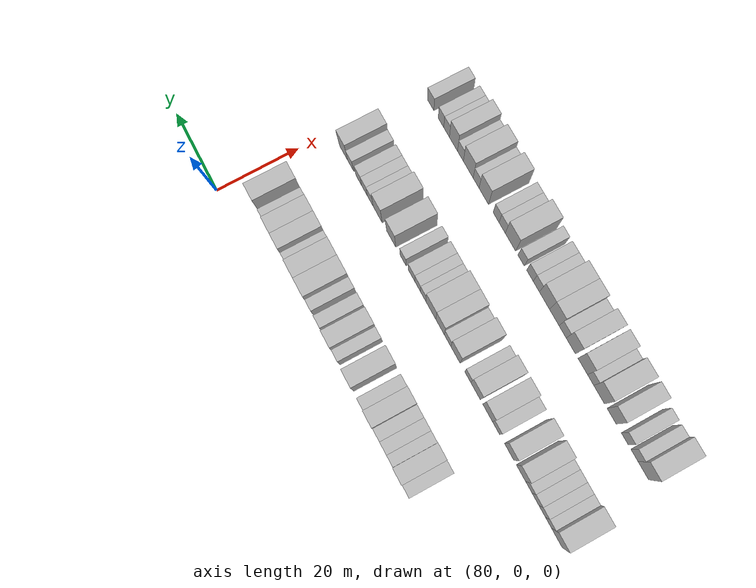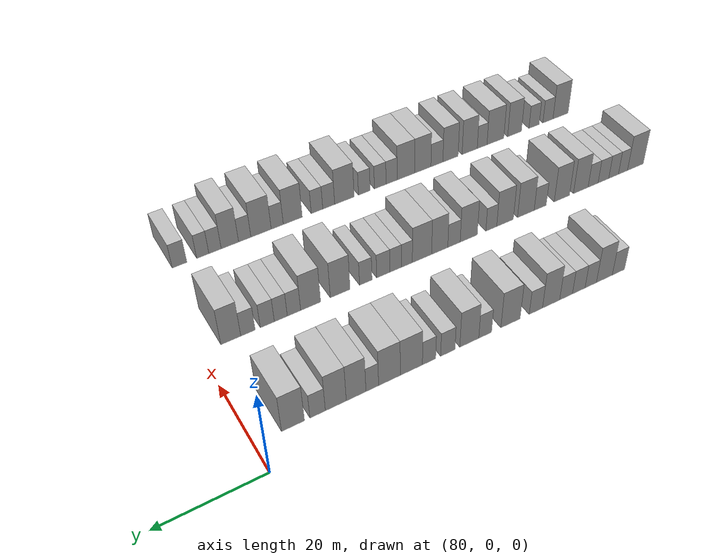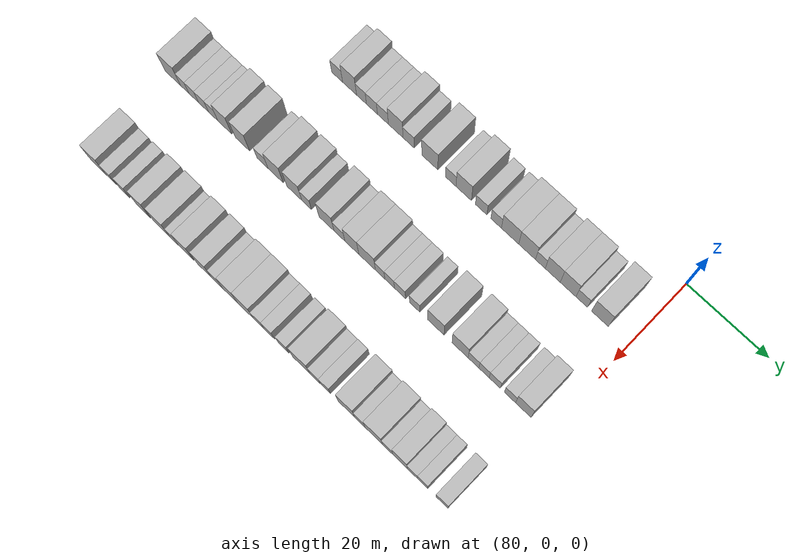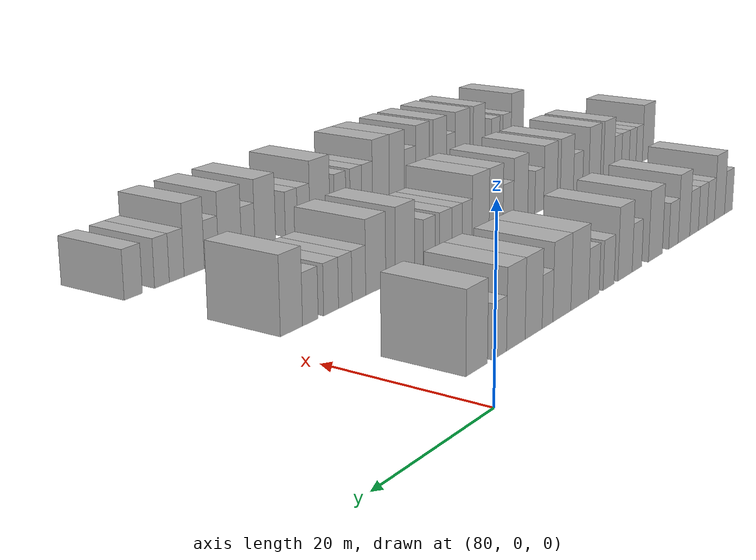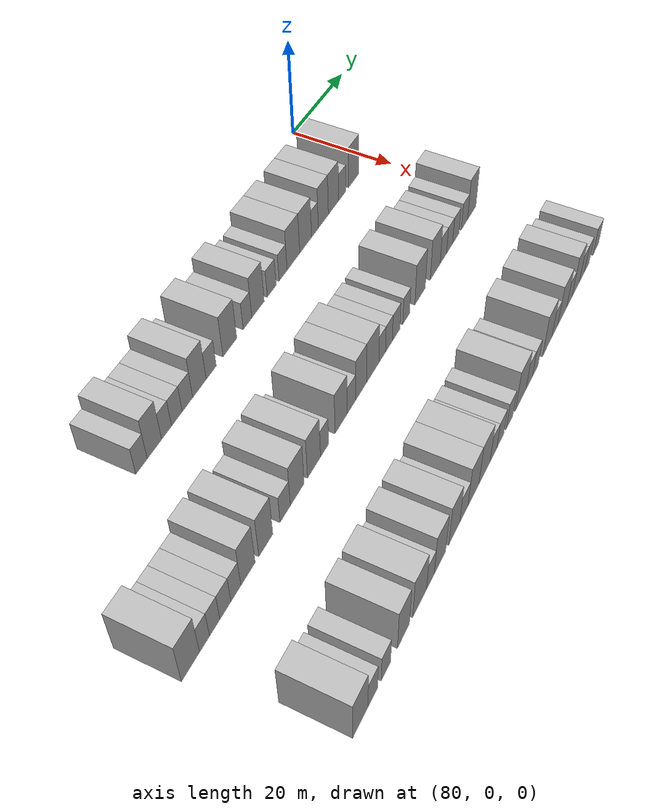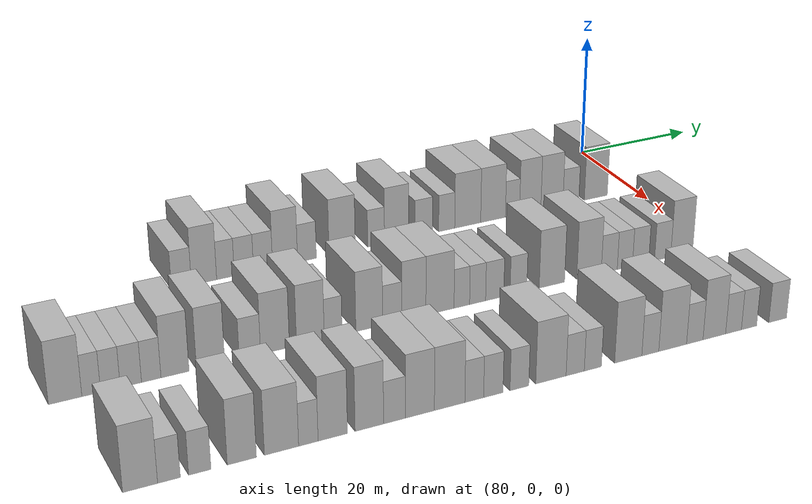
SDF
<sdf version="1.6">
 <world name="default">
  <model name="building_634">
   <static>1</static>
   <pose>91.0000 -74.9870 0 0.000000 0.000000 0.000000</pose>
   <link name="link">
    <pose>0 0 3.00 0 0 0</pose>
    <collision name="collision"><geometry><box><size>10.0000 2.9409 6.0000</size></box></geometry></collision>
    <visual name="visual">
     <cast_shadows>0</cast_shadows>
     <geometry><box><size>10.0000 2.9409 6.0000</size></box></geometry>
     <material>
      <script>
       <uri>model://HANNAS_wall/materials/scripts</uri>
       <uri>model://HANNAS_wall/materials/textures</uri>
       <name>vrc/HANNAS_wall</name>
      </script>
     </material>
    </visual>
   </link>
  </model>
  <model name="building_635">
   <static>1</static>
   <pose>91.0000 -71.6371 0 0.000000 0.000000 0.000000</pose>
   <link name="link">
    <pose>0 0 4.50 0 0 0</pose>
    <collision name="collision"><geometry><box><size>10.0000 3.7589 9.0000</size></box></geometry></collision>
    <visual name="visual">
     <cast_shadows>0</cast_shadows>
     <geometry><box><size>10.0000 3.7589 9.0000</size></box></geometry>
     <material>
      <script>
       <uri>model://HANNAS_wall/materials/scripts</uri>
       <uri>model://HANNAS_wall/materials/textures</uri>
       <name>vrc/HANNAS_wall</name>
      </script>
     </material>
    </visual>
   </link>
  </model>
  <model name="building_636">
   <static>1</static>
   <pose>91.0000 -68.4278 0 0.000000 0.000000 0.000000</pose>
   <link name="link">
    <pose>0 0 3.00 0 0 0</pose>
    <collision name="collision"><geometry><box><size>10.0000 2.6599 6.0000</size></box></geometry></collision>
    <visual name="visual">
     <cast_shadows>0</cast_shadows>
     <geometry><box><size>10.0000 2.6599 6.0000</size></box></geometry>
     <material>
      <script>
       <uri>model://HANNAS_wall/materials/scripts</uri>
       <uri>model://HANNAS_wall/materials/textures</uri>
       <name>vrc/HANNAS_wall</name>
      </script>
     </material>
    </visual>
   </link>
  </model>
  <model name="building_637">
   <static>1</static>
   <pose>91.0000 -65.6392 0 0.000000 0.000000 0.000000</pose>
   <link name="link">
    <pose>0 0 3.00 0 0 0</pose>
    <collision name="collision"><geometry><box><size>10.0000 2.9174 6.0000</size></box></geometry></collision>
    <visual name="visual">
     <cast_shadows>0</cast_shadows>
     <geometry><box><size>10.0000 2.9174 6.0000</size></box></geometry>
     <material>
      <script>
       <uri>model://HANNAS_wall/materials/scripts</uri>
       <uri>model://HANNAS_wall/materials/textures</uri>
       <name>vrc/HANNAS_wall</name>
      </script>
     </material>
    </visual>
   </link>
  </model>
  <model name="building_638">
   <static>1</static>
   <pose>91.0000 -62.7190 0 0.000000 0.000000 0.000000</pose>
   <link name="link">
    <pose>0 0 3.00 0 0 0</pose>
    <collision name="collision"><geometry><box><size>10.0000 2.9229 6.0000</size></box></geometry></collision>
    <visual name="visual">
     <cast_shadows>0</cast_shadows>
     <geometry><box><size>10.0000 2.9229 6.0000</size></box></geometry>
     <material>
      <script>
       <uri>model://HANNAS_wall/materials/scripts</uri>
       <uri>model://HANNAS_wall/materials/textures</uri>
       <name>vrc/HANNAS_wall</name>
      </script>
     </material>
    </visual>
   </link>
  </model>
  <model name="building_639">
   <static>1</static>
   <pose>91.0000 -59.3203 0 0.000000 0.000000 0.000000</pose>
   <link name="link">
    <pose>0 0 4.50 0 0 0</pose>
    <collision name="collision"><geometry><box><size>10.0000 3.8744 9.0000</size></box></geometry></collision>
    <visual name="visual">
     <cast_shadows>0</cast_shadows>
     <geometry><box><size>10.0000 3.8744 9.0000</size></box></geometry>
     <material>
      <script>
       <uri>model://HANNAS_wall/materials/scripts</uri>
       <uri>model://HANNAS_wall/materials/textures</uri>
       <name>vrc/HANNAS_wall</name>
      </script>
     </material>
    </visual>
   </link>
  </model>
  <model name="building_640">
   <static>1</static>
   <pose>91.0000 -55.9106 0 0.000000 0.000000 0.000000</pose>
   <link name="link">
    <pose>0 0 3.00 0 0 0</pose>
    <collision name="collision"><geometry><box><size>10.0000 2.9450 6.0000</size></box></geometry></collision>
    <visual name="visual">
     <cast_shadows>0</cast_shadows>
     <geometry><box><size>10.0000 2.9450 6.0000</size></box></geometry>
     <material>
      <script>
       <uri>model://HANNAS_wall/materials/scripts</uri>
       <uri>model://HANNAS_wall/materials/textures</uri>
       <name>vrc/HANNAS_wall</name>
      </script>
     </material>
    </visual>
   </link>
  </model>
  <model name="building_641">
   <static>1</static>
   <pose>91.0000 -50.3419 0 0.000000 0.000000 0.000000</pose>
   <link name="link">
    <pose>0 0 4.50 0 0 0</pose>
    <collision name="collision"><geometry><box><size>10.0000 4.1923 9.0000</size></box></geometry></collision>
    <visual name="visual">
     <cast_shadows>0</cast_shadows>
     <geometry><box><size>10.0000 4.1923 9.0000</size></box></geometry>
     <material>
      <script>
       <uri>model://HANNAS_wall/materials/scripts</uri>
       <uri>model://HANNAS_wall/materials/textures</uri>
       <name>vrc/HANNAS_wall</name>
      </script>
     </material>
    </visual>
   </link>
  </model>
  <model name="building_642">
   <static>1</static>
   <pose>91.0000 -44.8779 0 0.000000 0.000000 0.000000</pose>
   <link name="link">
    <pose>0 0 3.00 0 0 0</pose>
    <collision name="collision"><geometry><box><size>10.0000 2.7359 6.0000</size></box></geometry></collision>
    <visual name="visual">
     <cast_shadows>0</cast_shadows>
     <geometry><box><size>10.0000 2.7359 6.0000</size></box></geometry>
     <material>
      <script>
       <uri>model://HANNAS_wall/materials/scripts</uri>
       <uri>model://HANNAS_wall/materials/textures</uri>
       <name>vrc/HANNAS_wall</name>
      </script>
     </material>
    </visual>
   </link>
  </model>
  <model name="building_643">
   <static>1</static>
   <pose>91.0000 -41.5169 0 0.000000 0.000000 0.000000</pose>
   <link name="link">
    <pose>0 0 4.50 0 0 0</pose>
    <collision name="collision"><geometry><box><size>10.0000 3.9860 9.0000</size></box></geometry></collision>
    <visual name="visual">
     <cast_shadows>0</cast_shadows>
     <geometry><box><size>10.0000 3.9860 9.0000</size></box></geometry>
     <material>
      <script>
       <uri>model://HANNAS_wall/materials/scripts</uri>
       <uri>model://HANNAS_wall/materials/textures</uri>
       <name>vrc/HANNAS_wall</name>
      </script>
     </material>
    </visual>
   </link>
  </model>
  <model name="building_644">
   <static>1</static>
   <pose>91.0000 -37.0405 0 0.000000 0.000000 0.000000</pose>
   <link name="link">
    <pose>0 0 3.00 0 0 0</pose>
    <collision name="collision"><geometry><box><size>10.0000 2.9669 6.0000</size></box></geometry></collision>
    <visual name="visual">
     <cast_shadows>0</cast_shadows>
     <geometry><box><size>10.0000 2.9669 6.0000</size></box></geometry>
     <material>
      <script>
       <uri>model://HANNAS_wall/materials/scripts</uri>
       <uri>model://HANNAS_wall/materials/textures</uri>
       <name>vrc/HANNAS_wall</name>
      </script>
     </material>
    </visual>
   </link>
  </model>
  <model name="building_645">
   <static>1</static>
   <pose>91.0000 -33.2021 0 0.000000 0.000000 0.000000</pose>
   <link name="link">
    <pose>0 0 3.00 0 0 0</pose>
    <collision name="collision"><geometry><box><size>10.0000 2.7098 6.0000</size></box></geometry></collision>
    <visual name="visual">
     <cast_shadows>0</cast_shadows>
     <geometry><box><size>10.0000 2.7098 6.0000</size></box></geometry>
     <material>
      <script>
       <uri>model://HANNAS_wall/materials/scripts</uri>
       <uri>model://HANNAS_wall/materials/textures</uri>
       <name>vrc/HANNAS_wall</name>
      </script>
     </material>
    </visual>
   </link>
  </model>
  <model name="building_646">
   <static>1</static>
   <pose>91.0000 -29.6387 0 0.000000 0.000000 0.000000</pose>
   <link name="link">
    <pose>0 0 4.50 0 0 0</pose>
    <collision name="collision"><geometry><box><size>10.0000 4.4169 9.0000</size></box></geometry></collision>
    <visual name="visual">
     <cast_shadows>0</cast_shadows>
     <geometry><box><size>10.0000 4.4169 9.0000</size></box></geometry>
     <material>
      <script>
       <uri>model://HANNAS_wall/materials/scripts</uri>
       <uri>model://HANNAS_wall/materials/textures</uri>
       <name>vrc/HANNAS_wall</name>
      </script>
     </material>
    </visual>
   </link>
  </model>
  <model name="building_647">
   <static>1</static>
   <pose>91.0000 -25.2966 0 0.000000 0.000000 0.000000</pose>
   <link name="link">
    <pose>0 0 4.50 0 0 0</pose>
    <collision name="collision"><geometry><box><size>10.0000 4.2672 9.0000</size></box></geometry></collision>
    <visual name="visual">
     <cast_shadows>0</cast_shadows>
     <geometry><box><size>10.0000 4.2672 9.0000</size></box></geometry>
     <material>
      <script>
       <uri>model://HANNAS_wall/materials/scripts</uri>
       <uri>model://HANNAS_wall/materials/textures</uri>
       <name>vrc/HANNAS_wall</name>
      </script>
     </material>
    </visual>
   </link>
  </model>
  <model name="building_648">
   <static>1</static>
   <pose>91.0000 -21.9353 0 0.000000 0.000000 0.000000</pose>
   <link name="link">
    <pose>0 0 3.00 0 0 0</pose>
    <collision name="collision"><geometry><box><size>10.0000 2.4554 6.0000</size></box></geometry></collision>
    <visual name="visual">
     <cast_shadows>0</cast_shadows>
     <geometry><box><size>10.0000 2.4554 6.0000</size></box></geometry>
     <material>
      <script>
       <uri>model://HANNAS_wall/materials/scripts</uri>
       <uri>model://HANNAS_wall/materials/textures</uri>
       <name>vrc/HANNAS_wall</name>
      </script>
     </material>
    </visual>
   </link>
  </model>
  <model name="building_649">
   <static>1</static>
   <pose>91.0000 -18.8264 0 0.000000 0.000000 0.000000</pose>
   <link name="link">
    <pose>0 0 4.50 0 0 0</pose>
    <collision name="collision"><geometry><box><size>10.0000 3.7625 9.0000</size></box></geometry></collision>
    <visual name="visual">
     <cast_shadows>0</cast_shadows>
     <geometry><box><size>10.0000 3.7625 9.0000</size></box></geometry>
     <material>
      <script>
       <uri>model://HANNAS_wall/materials/scripts</uri>
       <uri>model://HANNAS_wall/materials/textures</uri>
       <name>vrc/HANNAS_wall</name>
      </script>
     </material>
    </visual>
   </link>
  </model>
  <model name="building_650">
   <static>1</static>
   <pose>91.0000 -14.9778 0 0.000000 0.000000 0.000000</pose>
   <link name="link">
    <pose>0 0 4.50 0 0 0</pose>
    <collision name="collision"><geometry><box><size>10.0000 3.9345 9.0000</size></box></geometry></collision>
    <visual name="visual">
     <cast_shadows>0</cast_shadows>
     <geometry><box><size>10.0000 3.9345 9.0000</size></box></geometry>
     <material>
      <script>
       <uri>model://HANNAS_wall/materials/scripts</uri>
       <uri>model://HANNAS_wall/materials/textures</uri>
       <name>vrc/HANNAS_wall</name>
      </script>
     </material>
    </visual>
   </link>
  </model>
  <model name="building_651">
   <static>1</static>
   <pose>91.0000 -11.5819 0 0.000000 0.000000 0.000000</pose>
   <link name="link">
    <pose>0 0 3.00 0 0 0</pose>
    <collision name="collision"><geometry><box><size>10.0000 2.8575 6.0000</size></box></geometry></collision>
    <visual name="visual">
     <cast_shadows>0</cast_shadows>
     <geometry><box><size>10.0000 2.8575 6.0000</size></box></geometry>
     <material>
      <script>
       <uri>model://HANNAS_wall/materials/scripts</uri>
       <uri>model://HANNAS_wall/materials/textures</uri>
       <name>vrc/HANNAS_wall</name>
      </script>
     </material>
    </visual>
   </link>
  </model>
  <model name="building_652">
   <static>1</static>
   <pose>91.0000 -7.0618 0 0.000000 0.000000 0.000000</pose>
   <link name="link">
    <pose>0 0 4.50 0 0 0</pose>
    <collision name="collision"><geometry><box><size>10.0000 4.1827 9.0000</size></box></geometry></collision>
    <visual name="visual">
     <cast_shadows>0</cast_shadows>
     <geometry><box><size>10.0000 4.1827 9.0000</size></box></geometry>
     <material>
      <script>
       <uri>model://HANNAS_wall/materials/scripts</uri>
       <uri>model://HANNAS_wall/materials/textures</uri>
       <name>vrc/HANNAS_wall</name>
      </script>
     </material>
    </visual>
   </link>
  </model>
  <model name="building_815">
   <static>1</static>
   <pose>113.0000 -97.4550 0 0.000000 0.000000 0.000000</pose>
   <link name="link">
    <pose>0 0 4.50 0 0 0</pose>
    <collision name="collision"><geometry><box><size>10.0000 4.2593 9.0000</size></box></geometry></collision>
    <visual name="visual">
     <cast_shadows>0</cast_shadows>
     <geometry><box><size>10.0000 4.2593 9.0000</size></box></geometry>
     <material>
      <script>
       <uri>model://HANNAS_wall/materials/scripts</uri>
       <uri>model://HANNAS_wall/materials/textures</uri>
       <name>vrc/HANNAS_wall</name>
      </script>
     </material>
    </visual>
   </link>
  </model>
  <model name="building_816">
   <static>1</static>
   <pose>113.0000 -94.1208 0 0.000000 0.000000 0.000000</pose>
   <link name="link">
    <pose>0 0 3.00 0 0 0</pose>
    <collision name="collision"><geometry><box><size>10.0000 2.4091 6.0000</size></box></geometry></collision>
    <visual name="visual">
     <cast_shadows>0</cast_shadows>
     <geometry><box><size>10.0000 2.4091 6.0000</size></box></geometry>
     <material>
      <script>
       <uri>model://HANNAS_wall/materials/scripts</uri>
       <uri>model://HANNAS_wall/materials/textures</uri>
       <name>vrc/HANNAS_wall</name>
      </script>
     </material>
    </visual>
   </link>
  </model>
  <model name="building_817">
   <static>1</static>
   <pose>113.0000 -91.6445 0 0.000000 0.000000 0.000000</pose>
   <link name="link">
    <pose>0 0 3.00 0 0 0</pose>
    <collision name="collision"><geometry><box><size>10.0000 2.5435 6.0000</size></box></geometry></collision>
    <visual name="visual">
     <cast_shadows>0</cast_shadows>
     <geometry><box><size>10.0000 2.5435 6.0000</size></box></geometry>
     <material>
      <script>
       <uri>model://HANNAS_wall/materials/scripts</uri>
       <uri>model://HANNAS_wall/materials/textures</uri>
       <name>vrc/HANNAS_wall</name>
      </script>
     </material>
    </visual>
   </link>
  </model>
  <model name="building_818">
   <static>1</static>
   <pose>113.0000 -88.9795 0 0.000000 0.000000 0.000000</pose>
   <link name="link">
    <pose>0 0 3.00 0 0 0</pose>
    <collision name="collision"><geometry><box><size>10.0000 2.7866 6.0000</size></box></geometry></collision>
    <visual name="visual">
     <cast_shadows>0</cast_shadows>
     <geometry><box><size>10.0000 2.7866 6.0000</size></box></geometry>
     <material>
      <script>
       <uri>model://HANNAS_wall/materials/scripts</uri>
       <uri>model://HANNAS_wall/materials/textures</uri>
       <name>vrc/HANNAS_wall</name>
      </script>
     </material>
    </visual>
   </link>
  </model>
  <model name="building_819">
   <static>1</static>
   <pose>113.0000 -86.3014 0 0.000000 0.000000 0.000000</pose>
   <link name="link">
    <pose>0 0 3.00 0 0 0</pose>
    <collision name="collision"><geometry><box><size>10.0000 2.5696 6.0000</size></box></geometry></collision>
    <visual name="visual">
     <cast_shadows>0</cast_shadows>
     <geometry><box><size>10.0000 2.5696 6.0000</size></box></geometry>
     <material>
      <script>
       <uri>model://HANNAS_wall/materials/scripts</uri>
       <uri>model://HANNAS_wall/materials/textures</uri>
       <name>vrc/HANNAS_wall</name>
      </script>
     </material>
    </visual>
   </link>
  </model>
  <model name="building_820">
   <static>1</static>
   <pose>113.0000 -83.1354 0 0.000000 0.000000 0.000000</pose>
   <link name="link">
    <pose>0 0 4.50 0 0 0</pose>
    <collision name="collision"><geometry><box><size>10.0000 3.7624 9.0000</size></box></geometry></collision>
    <visual name="visual">
     <cast_shadows>0</cast_shadows>
     <geometry><box><size>10.0000 3.7624 9.0000</size></box></geometry>
     <material>
      <script>
       <uri>model://HANNAS_wall/materials/scripts</uri>
       <uri>model://HANNAS_wall/materials/textures</uri>
       <name>vrc/HANNAS_wall</name>
      </script>
     </material>
    </visual>
   </link>
  </model>
  <model name="building_821">
   <static>1</static>
   <pose>113.0000 -78.3351 0 0.000000 0.000000 0.000000</pose>
   <link name="link">
    <pose>0 0 4.50 0 0 0</pose>
    <collision name="collision"><geometry><box><size>10.0000 3.8381 9.0000</size></box></geometry></collision>
    <visual name="visual">
     <cast_shadows>0</cast_shadows>
     <geometry><box><size>10.0000 3.8381 9.0000</size></box></geometry>
     <material>
      <script>
       <uri>model://HANNAS_wall/materials/scripts</uri>
       <uri>model://HANNAS_wall/materials/textures</uri>
       <name>vrc/HANNAS_wall</name>
      </script>
     </material>
    </visual>
   </link>
  </model>
  <model name="building_822">
   <static>1</static>
   <pose>113.0000 -72.9319 0 0.000000 0.000000 0.000000</pose>
   <link name="link">
    <pose>0 0 3.00 0 0 0</pose>
    <collision name="collision"><geometry><box><size>10.0000 2.9683 6.0000</size></box></geometry></collision>
    <visual name="visual">
     <cast_shadows>0</cast_shadows>
     <geometry><box><size>10.0000 2.9683 6.0000</size></box></geometry>
     <material>
      <script>
       <uri>model://HANNAS_wall/materials/scripts</uri>
       <uri>model://HANNAS_wall/materials/textures</uri>
       <name>vrc/HANNAS_wall</name>
      </script>
     </material>
    </visual>
   </link>
  </model>
  <model name="building_823">
   <static>1</static>
   <pose>113.0000 -69.4170 0 0.000000 0.000000 0.000000</pose>
   <link name="link">
    <pose>0 0 4.50 0 0 0</pose>
    <collision name="collision"><geometry><box><size>10.0000 4.0616 9.0000</size></box></geometry></collision>
    <visual name="visual">
     <cast_shadows>0</cast_shadows>
     <geometry><box><size>10.0000 4.0616 9.0000</size></box></geometry>
     <material>
      <script>
       <uri>model://HANNAS_wall/materials/scripts</uri>
       <uri>model://HANNAS_wall/materials/textures</uri>
       <name>vrc/HANNAS_wall</name>
      </script>
     </material>
    </visual>
   </link>
  </model>
  <model name="building_824">
   <static>1</static>
   <pose>113.0000 -64.3971 0 0.000000 0.000000 0.000000</pose>
   <link name="link">
    <pose>0 0 4.50 0 0 0</pose>
    <collision name="collision"><geometry><box><size>10.0000 3.9782 9.0000</size></box></geometry></collision>
    <visual name="visual">
     <cast_shadows>0</cast_shadows>
     <geometry><box><size>10.0000 3.9782 9.0000</size></box></geometry>
     <material>
      <script>
       <uri>model://HANNAS_wall/materials/scripts</uri>
       <uri>model://HANNAS_wall/materials/textures</uri>
       <name>vrc/HANNAS_wall</name>
      </script>
     </material>
    </visual>
   </link>
  </model>
  <model name="building_825">
   <static>1</static>
   <pose>113.0000 -61.1209 0 0.000000 0.000000 0.000000</pose>
   <link name="link">
    <pose>0 0 3.00 0 0 0</pose>
    <collision name="collision"><geometry><box><size>10.0000 2.5741 6.0000</size></box></geometry></collision>
    <visual name="visual">
     <cast_shadows>0</cast_shadows>
     <geometry><box><size>10.0000 2.5741 6.0000</size></box></geometry>
     <material>
      <script>
       <uri>model://HANNAS_wall/materials/scripts</uri>
       <uri>model://HANNAS_wall/materials/textures</uri>
       <name>vrc/HANNAS_wall</name>
      </script>
     </material>
    </visual>
   </link>
  </model>
  <model name="building_826">
   <static>1</static>
   <pose>113.0000 -55.8500 0 0.000000 0.000000 0.000000</pose>
   <link name="link">
    <pose>0 0 4.50 0 0 0</pose>
    <collision name="collision"><geometry><box><size>10.0000 3.9676 9.0000</size></box></geometry></collision>
    <visual name="visual">
     <cast_shadows>0</cast_shadows>
     <geometry><box><size>10.0000 3.9676 9.0000</size></box></geometry>
     <material>
      <script>
       <uri>model://HANNAS_wall/materials/scripts</uri>
       <uri>model://HANNAS_wall/materials/textures</uri>
       <name>vrc/HANNAS_wall</name>
      </script>
     </material>
    </visual>
   </link>
  </model>
  <model name="building_827">
   <static>1</static>
   <pose>113.0000 -52.4454 0 0.000000 0.000000 0.000000</pose>
   <link name="link">
    <pose>0 0 3.00 0 0 0</pose>
    <collision name="collision"><geometry><box><size>10.0000 2.8417 6.0000</size></box></geometry></collision>
    <visual name="visual">
     <cast_shadows>0</cast_shadows>
     <geometry><box><size>10.0000 2.8417 6.0000</size></box></geometry>
     <material>
      <script>
       <uri>model://HANNAS_wall/materials/scripts</uri>
       <uri>model://HANNAS_wall/materials/textures</uri>
       <name>vrc/HANNAS_wall</name>
      </script>
     </material>
    </visual>
   </link>
  </model>
  <model name="building_828">
   <static>1</static>
   <pose>113.0000 -49.1995 0 0.000000 0.000000 0.000000</pose>
   <link name="link">
    <pose>0 0 4.50 0 0 0</pose>
    <collision name="collision"><geometry><box><size>10.0000 3.6501 9.0000</size></box></geometry></collision>
    <visual name="visual">
     <cast_shadows>0</cast_shadows>
     <geometry><box><size>10.0000 3.6501 9.0000</size></box></geometry>
     <material>
      <script>
       <uri>model://HANNAS_wall/materials/scripts</uri>
       <uri>model://HANNAS_wall/materials/textures</uri>
       <name>vrc/HANNAS_wall</name>
      </script>
     </material>
    </visual>
   </link>
  </model>
  <model name="building_829">
   <static>1</static>
   <pose>113.0000 -45.2208 0 0.000000 0.000000 0.000000</pose>
   <link name="link">
    <pose>0 0 4.50 0 0 0</pose>
    <collision name="collision"><geometry><box><size>10.0000 4.3074 9.0000</size></box></geometry></collision>
    <visual name="visual">
     <cast_shadows>0</cast_shadows>
     <geometry><box><size>10.0000 4.3074 9.0000</size></box></geometry>
     <material>
      <script>
       <uri>model://HANNAS_wall/materials/scripts</uri>
       <uri>model://HANNAS_wall/materials/textures</uri>
       <name>vrc/HANNAS_wall</name>
      </script>
     </material>
    </visual>
   </link>
  </model>
  <model name="building_830">
   <static>1</static>
   <pose>113.0000 -41.8632 0 0.000000 0.000000 0.000000</pose>
   <link name="link">
    <pose>0 0 3.00 0 0 0</pose>
    <collision name="collision"><geometry><box><size>10.0000 2.4077 6.0000</size></box></geometry></collision>
    <visual name="visual">
     <cast_shadows>0</cast_shadows>
     <geometry><box><size>10.0000 2.4077 6.0000</size></box></geometry>
     <material>
      <script>
       <uri>model://HANNAS_wall/materials/scripts</uri>
       <uri>model://HANNAS_wall/materials/textures</uri>
       <name>vrc/HANNAS_wall</name>
      </script>
     </material>
    </visual>
   </link>
  </model>
  <model name="building_831">
   <static>1</static>
   <pose>113.0000 -39.4110 0 0.000000 0.000000 0.000000</pose>
   <link name="link">
    <pose>0 0 3.00 0 0 0</pose>
    <collision name="collision"><geometry><box><size>10.0000 2.4968 6.0000</size></box></geometry></collision>
    <visual name="visual">
     <cast_shadows>0</cast_shadows>
     <geometry><box><size>10.0000 2.4968 6.0000</size></box></geometry>
     <material>
      <script>
       <uri>model://HANNAS_wall/materials/scripts</uri>
       <uri>model://HANNAS_wall/materials/textures</uri>
       <name>vrc/HANNAS_wall</name>
      </script>
     </material>
    </visual>
   </link>
  </model>
  <model name="building_832">
   <static>1</static>
   <pose>113.0000 -36.7355 0 0.000000 0.000000 0.000000</pose>
   <link name="link">
    <pose>0 0 3.00 0 0 0</pose>
    <collision name="collision"><geometry><box><size>10.0000 2.8541 6.0000</size></box></geometry></collision>
    <visual name="visual">
     <cast_shadows>0</cast_shadows>
     <geometry><box><size>10.0000 2.8541 6.0000</size></box></geometry>
     <material>
      <script>
       <uri>model://HANNAS_wall/materials/scripts</uri>
       <uri>model://HANNAS_wall/materials/textures</uri>
       <name>vrc/HANNAS_wall</name>
      </script>
     </material>
    </visual>
   </link>
  </model>
  <model name="building_833">
   <static>1</static>
   <pose>113.0000 -32.9774 0 0.000000 0.000000 0.000000</pose>
   <link name="link">
    <pose>0 0 3.00 0 0 0</pose>
    <collision name="collision"><geometry><box><size>10.0000 2.6620 6.0000</size></box></geometry></collision>
    <visual name="visual">
     <cast_shadows>0</cast_shadows>
     <geometry><box><size>10.0000 2.6620 6.0000</size></box></geometry>
     <material>
      <script>
       <uri>model://HANNAS_wall/materials/scripts</uri>
       <uri>model://HANNAS_wall/materials/textures</uri>
       <name>vrc/HANNAS_wall</name>
      </script>
     </material>
    </visual>
   </link>
  </model>
  <model name="building_834">
   <static>1</static>
   <pose>113.0000 -27.5882 0 0.000000 0.000000 0.000000</pose>
   <link name="link">
    <pose>0 0 4.50 0 0 0</pose>
    <collision name="collision"><geometry><box><size>10.0000 4.1165 9.0000</size></box></geometry></collision>
    <visual name="visual">
     <cast_shadows>0</cast_shadows>
     <geometry><box><size>10.0000 4.1165 9.0000</size></box></geometry>
     <material>
      <script>
       <uri>model://HANNAS_wall/materials/scripts</uri>
       <uri>model://HANNAS_wall/materials/textures</uri>
       <name>vrc/HANNAS_wall</name>
      </script>
     </material>
    </visual>
   </link>
  </model>
  <model name="building_835">
   <static>1</static>
   <pose>113.0000 -21.4997 0 0.000000 0.000000 0.000000</pose>
   <link name="link">
    <pose>0 0 4.50 0 0 0</pose>
    <collision name="collision"><geometry><box><size>10.0000 4.0605 9.0000</size></box></geometry></collision>
    <visual name="visual">
     <cast_shadows>0</cast_shadows>
     <geometry><box><size>10.0000 4.0605 9.0000</size></box></geometry>
     <material>
      <script>
       <uri>model://HANNAS_wall/materials/scripts</uri>
       <uri>model://HANNAS_wall/materials/textures</uri>
       <name>vrc/HANNAS_wall</name>
      </script>
     </material>
    </visual>
   </link>
  </model>
  <model name="building_836">
   <static>1</static>
   <pose>113.0000 -18.1268 0 0.000000 0.000000 0.000000</pose>
   <link name="link">
    <pose>0 0 3.00 0 0 0</pose>
    <collision name="collision"><geometry><box><size>10.0000 2.6852 6.0000</size></box></geometry></collision>
    <visual name="visual">
     <cast_shadows>0</cast_shadows>
     <geometry><box><size>10.0000 2.6852 6.0000</size></box></geometry>
     <material>
      <script>
       <uri>model://HANNAS_wall/materials/scripts</uri>
       <uri>model://HANNAS_wall/materials/textures</uri>
       <name>vrc/HANNAS_wall</name>
      </script>
     </material>
    </visual>
   </link>
  </model>
  <model name="building_837">
   <static>1</static>
   <pose>113.0000 -15.4956 0 0.000000 0.000000 0.000000</pose>
   <link name="link">
    <pose>0 0 3.00 0 0 0</pose>
    <collision name="collision"><geometry><box><size>10.0000 2.5773 6.0000</size></box></geometry></collision>
    <visual name="visual">
     <cast_shadows>0</cast_shadows>
     <geometry><box><size>10.0000 2.5773 6.0000</size></box></geometry>
     <material>
      <script>
       <uri>model://HANNAS_wall/materials/scripts</uri>
       <uri>model://HANNAS_wall/materials/textures</uri>
       <name>vrc/HANNAS_wall</name>
      </script>
     </material>
    </visual>
   </link>
  </model>
  <model name="building_838">
   <static>1</static>
   <pose>113.0000 -12.8261 0 0.000000 0.000000 0.000000</pose>
   <link name="link">
    <pose>0 0 3.00 0 0 0</pose>
    <collision name="collision"><geometry><box><size>10.0000 2.7617 6.0000</size></box></geometry></collision>
    <visual name="visual">
     <cast_shadows>0</cast_shadows>
     <geometry><box><size>10.0000 2.7617 6.0000</size></box></geometry>
     <material>
      <script>
       <uri>model://HANNAS_wall/materials/scripts</uri>
       <uri>model://HANNAS_wall/materials/textures</uri>
       <name>vrc/HANNAS_wall</name>
      </script>
     </material>
    </visual>
   </link>
  </model>
  <model name="building_839">
   <static>1</static>
   <pose>113.0000 -9.0489 0 0.000000 0.000000 0.000000</pose>
   <link name="link">
    <pose>0 0 3.00 0 0 0</pose>
    <collision name="collision"><geometry><box><size>10.0000 2.7926 6.0000</size></box></geometry></collision>
    <visual name="visual">
     <cast_shadows>0</cast_shadows>
     <geometry><box><size>10.0000 2.7926 6.0000</size></box></geometry>
     <material>
      <script>
       <uri>model://HANNAS_wall/materials/scripts</uri>
       <uri>model://HANNAS_wall/materials/textures</uri>
       <name>vrc/HANNAS_wall</name>
      </script>
     </material>
    </visual>
   </link>
  </model>
  <model name="building_840">
   <static>1</static>
   <pose>113.0000 -5.7442 0 0.000000 0.000000 0.000000</pose>
   <link name="link">
    <pose>0 0 4.50 0 0 0</pose>
    <collision name="collision"><geometry><box><size>10.0000 3.8169 9.0000</size></box></geometry></collision>
    <visual name="visual">
     <cast_shadows>0</cast_shadows>
     <geometry><box><size>10.0000 3.8169 9.0000</size></box></geometry>
     <material>
      <script>
       <uri>model://HANNAS_wall/materials/scripts</uri>
       <uri>model://HANNAS_wall/materials/textures</uri>
       <name>vrc/HANNAS_wall</name>
      </script>
     </material>
    </visual>
   </link>
  </model>
  <model name="building_1004">
   <static>1</static>
   <pose>135.0000 -94.5341 0 0.000000 0.000000 0.000000</pose>
   <link name="link">
    <pose>0 0 4.50 0 0 0</pose>
    <collision name="collision"><geometry><box><size>10.0000 4.1659 9.0000</size></box></geometry></collision>
    <visual name="visual">
     <cast_shadows>0</cast_shadows>
     <geometry><box><size>10.0000 4.1659 9.0000</size></box></geometry>
     <material>
      <script>
       <uri>model://HANNAS_wall/materials/scripts</uri>
       <uri>model://HANNAS_wall/materials/textures</uri>
       <name>vrc/HANNAS_wall</name>
      </script>
     </material>
    </visual>
   </link>
  </model>
  <model name="building_1005">
   <static>1</static>
   <pose>135.0000 -91.0810 0 0.000000 0.000000 0.000000</pose>
   <link name="link">
    <pose>0 0 3.00 0 0 0</pose>
    <collision name="collision"><geometry><box><size>10.0000 2.7403 6.0000</size></box></geometry></collision>
    <visual name="visual">
     <cast_shadows>0</cast_shadows>
     <geometry><box><size>10.0000 2.7403 6.0000</size></box></geometry>
     <material>
      <script>
       <uri>model://HANNAS_wall/materials/scripts</uri>
       <uri>model://HANNAS_wall/materials/textures</uri>
       <name>vrc/HANNAS_wall</name>
      </script>
     </material>
    </visual>
   </link>
  </model>
  <model name="building_1006">
   <static>1</static>
   <pose>135.0000 -87.3403 0 0.000000 0.000000 0.000000</pose>
   <link name="link">
    <pose>0 0 3.00 0 0 0</pose>
    <collision name="collision"><geometry><box><size>10.0000 2.7412 6.0000</size></box></geometry></collision>
    <visual name="visual">
     <cast_shadows>0</cast_shadows>
     <geometry><box><size>10.0000 2.7412 6.0000</size></box></geometry>
     <material>
      <script>
       <uri>model://HANNAS_wall/materials/scripts</uri>
       <uri>model://HANNAS_wall/materials/textures</uri>
       <name>vrc/HANNAS_wall</name>
      </script>
     </material>
    </visual>
   </link>
  </model>
  <model name="building_1007">
   <static>1</static>
   <pose>135.0000 -82.1443 0 0.000000 0.000000 0.000000</pose>
   <link name="link">
    <pose>0 0 4.50 0 0 0</pose>
    <collision name="collision"><geometry><box><size>10.0000 3.6507 9.0000</size></box></geometry></collision>
    <visual name="visual">
     <cast_shadows>0</cast_shadows>
     <geometry><box><size>10.0000 3.6507 9.0000</size></box></geometry>
     <material>
      <script>
       <uri>model://HANNAS_wall/materials/scripts</uri>
       <uri>model://HANNAS_wall/materials/textures</uri>
       <name>vrc/HANNAS_wall</name>
      </script>
     </material>
    </visual>
   </link>
  </model>
  <model name="building_1008">
   <static>1</static>
   <pose>135.0000 -77.1370 0 0.000000 0.000000 0.000000</pose>
   <link name="link">
    <pose>0 0 4.50 0 0 0</pose>
    <collision name="collision"><geometry><box><size>10.0000 4.3639 9.0000</size></box></geometry></collision>
    <visual name="visual">
     <cast_shadows>0</cast_shadows>
     <geometry><box><size>10.0000 4.3639 9.0000</size></box></geometry>
     <material>
      <script>
       <uri>model://HANNAS_wall/materials/scripts</uri>
       <uri>model://HANNAS_wall/materials/textures</uri>
       <name>vrc/HANNAS_wall</name>
      </script>
     </material>
    </visual>
   </link>
  </model>
  <model name="building_1009">
   <static>1</static>
   <pose>135.0000 -73.6992 0 0.000000 0.000000 0.000000</pose>
   <link name="link">
    <pose>0 0 3.00 0 0 0</pose>
    <collision name="collision"><geometry><box><size>10.0000 2.5117 6.0000</size></box></geometry></collision>
    <visual name="visual">
     <cast_shadows>0</cast_shadows>
     <geometry><box><size>10.0000 2.5117 6.0000</size></box></geometry>
     <material>
      <script>
       <uri>model://HANNAS_wall/materials/scripts</uri>
       <uri>model://HANNAS_wall/materials/textures</uri>
       <name>vrc/HANNAS_wall</name>
      </script>
     </material>
    </visual>
   </link>
  </model>
  <model name="building_1010">
   <static>1</static>
   <pose>135.0000 -70.5207 0 0.000000 0.000000 0.000000</pose>
   <link name="link">
    <pose>0 0 4.50 0 0 0</pose>
    <collision name="collision"><geometry><box><size>10.0000 3.8454 9.0000</size></box></geometry></collision>
    <visual name="visual">
     <cast_shadows>0</cast_shadows>
     <geometry><box><size>10.0000 3.8454 9.0000</size></box></geometry>
     <material>
      <script>
       <uri>model://HANNAS_wall/materials/scripts</uri>
       <uri>model://HANNAS_wall/materials/textures</uri>
       <name>vrc/HANNAS_wall</name>
      </script>
     </material>
    </visual>
   </link>
  </model>
  <model name="building_1011">
   <static>1</static>
   <pose>135.0000 -65.6963 0 0.000000 0.000000 0.000000</pose>
   <link name="link">
    <pose>0 0 4.50 0 0 0</pose>
    <collision name="collision"><geometry><box><size>10.0000 3.8034 9.0000</size></box></geometry></collision>
    <visual name="visual">
     <cast_shadows>0</cast_shadows>
     <geometry><box><size>10.0000 3.8034 9.0000</size></box></geometry>
     <material>
      <script>
       <uri>model://HANNAS_wall/materials/scripts</uri>
       <uri>model://HANNAS_wall/materials/textures</uri>
       <name>vrc/HANNAS_wall</name>
      </script>
     </material>
    </visual>
   </link>
  </model>
  <model name="building_1012">
   <static>1</static>
   <pose>135.0000 -62.3205 0 0.000000 0.000000 0.000000</pose>
   <link name="link">
    <pose>0 0 3.00 0 0 0</pose>
    <collision name="collision"><geometry><box><size>10.0000 2.9481 6.0000</size></box></geometry></collision>
    <visual name="visual">
     <cast_shadows>0</cast_shadows>
     <geometry><box><size>10.0000 2.9481 6.0000</size></box></geometry>
     <material>
      <script>
       <uri>model://HANNAS_wall/materials/scripts</uri>
       <uri>model://HANNAS_wall/materials/textures</uri>
       <name>vrc/HANNAS_wall</name>
      </script>
     </material>
    </visual>
   </link>
  </model>
  <model name="building_1013">
   <static>1</static>
   <pose>135.0000 -58.8689 0 0.000000 0.000000 0.000000</pose>
   <link name="link">
    <pose>0 0 4.50 0 0 0</pose>
    <collision name="collision"><geometry><box><size>10.0000 3.9552 9.0000</size></box></geometry></collision>
    <visual name="visual">
     <cast_shadows>0</cast_shadows>
     <geometry><box><size>10.0000 3.9552 9.0000</size></box></geometry>
     <material>
      <script>
       <uri>model://HANNAS_wall/materials/scripts</uri>
       <uri>model://HANNAS_wall/materials/textures</uri>
       <name>vrc/HANNAS_wall</name>
      </script>
     </material>
    </visual>
   </link>
  </model>
  <model name="building_1014">
   <static>1</static>
   <pose>135.0000 -54.7764 0 0.000000 0.000000 0.000000</pose>
   <link name="link">
    <pose>0 0 4.50 0 0 0</pose>
    <collision name="collision"><geometry><box><size>10.0000 4.2299 9.0000</size></box></geometry></collision>
    <visual name="visual">
     <cast_shadows>0</cast_shadows>
     <geometry><box><size>10.0000 4.2299 9.0000</size></box></geometry>
     <material>
      <script>
       <uri>model://HANNAS_wall/materials/scripts</uri>
       <uri>model://HANNAS_wall/materials/textures</uri>
       <name>vrc/HANNAS_wall</name>
      </script>
     </material>
    </visual>
   </link>
  </model>
  <model name="building_1015">
   <static>1</static>
   <pose>135.0000 -51.3410 0 0.000000 0.000000 0.000000</pose>
   <link name="link">
    <pose>0 0 3.00 0 0 0</pose>
    <collision name="collision"><geometry><box><size>10.0000 2.6410 6.0000</size></box></geometry></collision>
    <visual name="visual">
     <cast_shadows>0</cast_shadows>
     <geometry><box><size>10.0000 2.6410 6.0000</size></box></geometry>
     <material>
      <script>
       <uri>model://HANNAS_wall/materials/scripts</uri>
       <uri>model://HANNAS_wall/materials/textures</uri>
       <name>vrc/HANNAS_wall</name>
      </script>
     </material>
    </visual>
   </link>
  </model>
  <model name="building_1016">
   <static>1</static>
   <pose>135.0000 -48.6466 0 0.000000 0.000000 0.000000</pose>
   <link name="link">
    <pose>0 0 3.00 0 0 0</pose>
    <collision name="collision"><geometry><box><size>10.0000 2.7478 6.0000</size></box></geometry></collision>
    <visual name="visual">
     <cast_shadows>0</cast_shadows>
     <geometry><box><size>10.0000 2.7478 6.0000</size></box></geometry>
     <material>
      <script>
       <uri>model://HANNAS_wall/materials/scripts</uri>
       <uri>model://HANNAS_wall/materials/textures</uri>
       <name>vrc/HANNAS_wall</name>
      </script>
     </material>
    </visual>
   </link>
  </model>
  <model name="building_1017">
   <static>1</static>
   <pose>135.0000 -44.9161 0 0.000000 0.000000 0.000000</pose>
   <link name="link">
    <pose>0 0 3.00 0 0 0</pose>
    <collision name="collision"><geometry><box><size>10.0000 2.7130 6.0000</size></box></geometry></collision>
    <visual name="visual">
     <cast_shadows>0</cast_shadows>
     <geometry><box><size>10.0000 2.7130 6.0000</size></box></geometry>
     <material>
      <script>
       <uri>model://HANNAS_wall/materials/scripts</uri>
       <uri>model://HANNAS_wall/materials/textures</uri>
       <name>vrc/HANNAS_wall</name>
      </script>
     </material>
    </visual>
   </link>
  </model>
  <model name="building_1018">
   <static>1</static>
   <pose>135.0000 -40.3346 0 0.000000 0.000000 0.000000</pose>
   <link name="link">
    <pose>0 0 4.50 0 0 0</pose>
    <collision name="collision"><geometry><box><size>10.0000 4.4500 9.0000</size></box></geometry></collision>
    <visual name="visual">
     <cast_shadows>0</cast_shadows>
     <geometry><box><size>10.0000 4.4500 9.0000</size></box></geometry>
     <material>
      <script>
       <uri>model://HANNAS_wall/materials/scripts</uri>
       <uri>model://HANNAS_wall/materials/textures</uri>
       <name>vrc/HANNAS_wall</name>
      </script>
     </material>
    </visual>
   </link>
  </model>
  <model name="building_1019">
   <static>1</static>
   <pose>135.0000 -36.7592 0 0.000000 0.000000 0.000000</pose>
   <link name="link">
    <pose>0 0 3.00 0 0 0</pose>
    <collision name="collision"><geometry><box><size>10.0000 2.7009 6.0000</size></box></geometry></collision>
    <visual name="visual">
     <cast_shadows>0</cast_shadows>
     <geometry><box><size>10.0000 2.7009 6.0000</size></box></geometry>
     <material>
      <script>
       <uri>model://HANNAS_wall/materials/scripts</uri>
       <uri>model://HANNAS_wall/materials/textures</uri>
       <name>vrc/HANNAS_wall</name>
      </script>
     </material>
    </visual>
   </link>
  </model>
  <model name="building_1020">
   <static>1</static>
   <pose>135.0000 -34.1230 0 0.000000 0.000000 0.000000</pose>
   <link name="link">
    <pose>0 0 3.00 0 0 0</pose>
    <collision name="collision"><geometry><box><size>10.0000 2.5715 6.0000</size></box></geometry></collision>
    <visual name="visual">
     <cast_shadows>0</cast_shadows>
     <geometry><box><size>10.0000 2.5715 6.0000</size></box></geometry>
     <material>
      <script>
       <uri>model://HANNAS_wall/materials/scripts</uri>
       <uri>model://HANNAS_wall/materials/textures</uri>
       <name>vrc/HANNAS_wall</name>
      </script>
     </material>
    </visual>
   </link>
  </model>
  <model name="building_1021">
   <static>1</static>
   <pose>135.0000 -28.7566 0 0.000000 0.000000 0.000000</pose>
   <link name="link">
    <pose>0 0 4.50 0 0 0</pose>
    <collision name="collision"><geometry><box><size>10.0000 4.1613 9.0000</size></box></geometry></collision>
    <visual name="visual">
     <cast_shadows>0</cast_shadows>
     <geometry><box><size>10.0000 4.1613 9.0000</size></box></geometry>
     <material>
      <script>
       <uri>model://HANNAS_wall/materials/scripts</uri>
       <uri>model://HANNAS_wall/materials/textures</uri>
       <name>vrc/HANNAS_wall</name>
      </script>
     </material>
    </visual>
   </link>
  </model>
  <model name="building_1022">
   <static>1</static>
   <pose>135.0000 -25.3666 0 0.000000 0.000000 0.000000</pose>
   <link name="link">
    <pose>0 0 3.00 0 0 0</pose>
    <collision name="collision"><geometry><box><size>10.0000 2.6186 6.0000</size></box></geometry></collision>
    <visual name="visual">
     <cast_shadows>0</cast_shadows>
     <geometry><box><size>10.0000 2.6186 6.0000</size></box></geometry>
     <material>
      <script>
       <uri>model://HANNAS_wall/materials/scripts</uri>
       <uri>model://HANNAS_wall/materials/textures</uri>
       <name>vrc/HANNAS_wall</name>
      </script>
     </material>
    </visual>
   </link>
  </model>
  <model name="building_1023">
   <static>1</static>
   <pose>135.0000 -21.8793 0 0.000000 0.000000 0.000000</pose>
   <link name="link">
    <pose>0 0 4.50 0 0 0</pose>
    <collision name="collision"><geometry><box><size>10.0000 4.3561 9.0000</size></box></geometry></collision>
    <visual name="visual">
     <cast_shadows>0</cast_shadows>
     <geometry><box><size>10.0000 4.3561 9.0000</size></box></geometry>
     <material>
      <script>
       <uri>model://HANNAS_wall/materials/scripts</uri>
       <uri>model://HANNAS_wall/materials/textures</uri>
       <name>vrc/HANNAS_wall</name>
      </script>
     </material>
    </visual>
   </link>
  </model>
  <model name="building_1024">
   <static>1</static>
   <pose>135.0000 -18.3964 0 0.000000 0.000000 0.000000</pose>
   <link name="link">
    <pose>0 0 3.00 0 0 0</pose>
    <collision name="collision"><geometry><box><size>10.0000 2.6097 6.0000</size></box></geometry></collision>
    <visual name="visual">
     <cast_shadows>0</cast_shadows>
     <geometry><box><size>10.0000 2.6097 6.0000</size></box></geometry>
     <material>
      <script>
       <uri>model://HANNAS_wall/materials/scripts</uri>
       <uri>model://HANNAS_wall/materials/textures</uri>
       <name>vrc/HANNAS_wall</name>
      </script>
     </material>
    </visual>
   </link>
  </model>
  <model name="building_1025">
   <static>1</static>
   <pose>135.0000 -15.2780 0 0.000000 0.000000 0.000000</pose>
   <link name="link">
    <pose>0 0 4.50 0 0 0</pose>
    <collision name="collision"><geometry><box><size>10.0000 3.6271 9.0000</size></box></geometry></collision>
    <visual name="visual">
     <cast_shadows>0</cast_shadows>
     <geometry><box><size>10.0000 3.6271 9.0000</size></box></geometry>
     <material>
      <script>
       <uri>model://HANNAS_wall/materials/scripts</uri>
       <uri>model://HANNAS_wall/materials/textures</uri>
       <name>vrc/HANNAS_wall</name>
      </script>
     </material>
    </visual>
   </link>
  </model>
  <model name="building_1026">
   <static>1</static>
   <pose>135.0000 -12.1866 0 0.000000 0.000000 0.000000</pose>
   <link name="link">
    <pose>0 0 3.00 0 0 0</pose>
    <collision name="collision"><geometry><box><size>10.0000 2.5556 6.0000</size></box></geometry></collision>
    <visual name="visual">
     <cast_shadows>0</cast_shadows>
     <geometry><box><size>10.0000 2.5556 6.0000</size></box></geometry>
     <material>
      <script>
       <uri>model://HANNAS_wall/materials/scripts</uri>
       <uri>model://HANNAS_wall/materials/textures</uri>
       <name>vrc/HANNAS_wall</name>
      </script>
     </material>
    </visual>
   </link>
  </model>
  <model name="building_1027">
   <static>1</static>
   <pose>135.0000 -9.6609 0 0.000000 0.000000 0.000000</pose>
   <link name="link">
    <pose>0 0 3.00 0 0 0</pose>
    <collision name="collision"><geometry><box><size>10.0000 2.4959 6.0000</size></box></geometry></collision>
    <visual name="visual">
     <cast_shadows>0</cast_shadows>
     <geometry><box><size>10.0000 2.4959 6.0000</size></box></geometry>
     <material>
      <script>
       <uri>model://HANNAS_wall/materials/scripts</uri>
       <uri>model://HANNAS_wall/materials/textures</uri>
       <name>vrc/HANNAS_wall</name>
      </script>
     </material>
    </visual>
   </link>
  </model>
  <model name="building_1028">
   <static>1</static>
   <pose>135.0000 -4.9412 0 0.000000 0.000000 0.000000</pose>
   <link name="link">
    <pose>0 0 3.00 0 0 0</pose>
    <collision name="collision"><geometry><box><size>10.0000 2.9435 6.0000</size></box></geometry></collision>
    <visual name="visual">
     <cast_shadows>0</cast_shadows>
     <geometry><box><size>10.0000 2.9435 6.0000</size></box></geometry>
     <material>
      <script>
       <uri>model://HANNAS_wall/materials/scripts</uri>
       <uri>model://HANNAS_wall/materials/textures</uri>
       <name>vrc/HANNAS_wall</name>
      </script>
     </material>
    </visual>
   </link>
  </model>
 </world>
</sdf>
